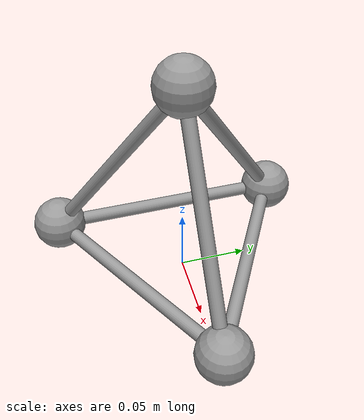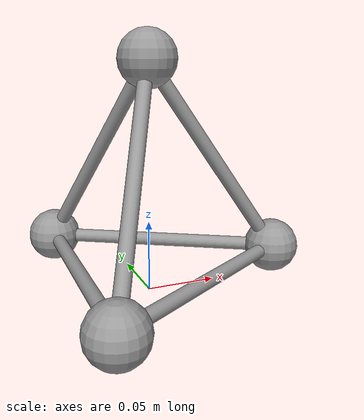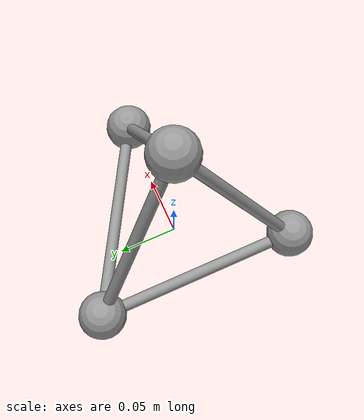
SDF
<?xml version="1.0" ?>

<sdf version="1.5">
  <model name="tetraball">
    <link name="link">
      <pose>0 0 0.02  0 0 0</pose>
      <inertial>
        <pose>0.0 0.0 0.03535533905932737  0 0 0</pose>
        <mass>0.08042477193189872</mass>
        <inertia>
          <ixx>0.0006160537529983441</ixx>
          <iyy>0.000616053752998344</iyy>
          <izz>0.0006160537529983441</izz>
          <ixy>0.0</ixy>
          <ixz>0.0</ixz>
          <iyz>0.0</iyz>
        </inertia>
      </inertial>

      <collision name="collision_a">
        <pose>0.09999999999999999 0 0  0 0 0</pose>
        <geometry>
          <sphere>
            <radius>0.02</radius>
          </sphere>
        </geometry>
        <surface>
          <friction>
            <ode>
              <mu>0.9</mu>
              <mu2>0.9</mu2>
            </ode>
          </friction>
        </surface>
      </collision>
      <visual name="visual_a">
        <pose>0.09999999999999999 0 0  0 0 0</pose>
        <geometry>
          <sphere>
            <radius>0.02</radius>
          </sphere>
        </geometry>
        <material>
          <script>
            <uri>file://media/materials/scripts/gazebo.material</uri>
            <name>Gazebo/Grey</name>
          </script>
        </material>
      </visual>

      <collision name="collision_a_to_b">
        <pose>0.024999999999999998 0.04330127018922193 0.0  -1.5707962969925737 -1.0471975511965974 1.047197525387029</pose>
        <geometry>
          <cylinder>
            <radius>0.005</radius>
            <length>0.17320508075688773</length>
          </cylinder>
        </geometry>
        <surface>
          <friction>
            <ode>
              <mu>0.9</mu>
              <mu2>0.9</mu2>
            </ode>
          </friction>
        </surface>
      </collision>
      <visual name="visual_a_to_b">
        <pose>0.024999999999999998 0.04330127018922193 0.0  -1.5707962969925737 -1.0471975511965974 1.047197525387029</pose>
        <geometry>
          <cylinder>
            <radius>0.005</radius>
            <length>0.17320508075688773</length>
          </cylinder>
        </geometry>
        <material>
          <script>
            <uri>file://media/materials/scripts/gazebo.material</uri>
            <name>Gazebo/Grey</name>
          </script>
        </material>
      </visual>

      <collision name="collision_a_to_c">
        <pose>0.024999999999999998 -0.04330127018922193 0.0  1.5707962969925737 -1.0471975511965974 -1.047197525387029</pose>
        <geometry>
          <cylinder>
            <radius>0.005</radius>
            <length>0.17320508075688773</length>
          </cylinder>
        </geometry>
        <surface>
          <friction>
            <ode>
              <mu>0.9</mu>
              <mu2>0.9</mu2>
            </ode>
          </friction>
        </surface>
      </collision>
      <visual name="visual_a_to_c">
        <pose>0.024999999999999998 -0.04330127018922193 0.0  1.5707962969925737 -1.0471975511965974 -1.047197525387029</pose>
        <geometry>
          <cylinder>
            <radius>0.005</radius>
            <length>0.17320508075688773</length>
          </cylinder>
        </geometry>
        <material>
          <script>
            <uri>file://media/materials/scripts/gazebo.material</uri>
            <name>Gazebo/Grey</name>
          </script>
        </material>
      </visual>

      <collision name="collision_a_to_d">
        <pose>0.049999999999999996 0.0 0.07071067811865474  0.0 -0.6154797086703877 0.0</pose>
        <geometry>
          <cylinder>
            <radius>0.005</radius>
            <length>0.1732050807568877</length>
          </cylinder>
        </geometry>
        <surface>
          <friction>
            <ode>
              <mu>0.9</mu>
              <mu2>0.9</mu2>
            </ode>
          </friction>
        </surface>
      </collision>
      <visual name="visual_a_to_d">
        <pose>0.049999999999999996 0.0 0.07071067811865474  0.0 -0.6154797086703877 0.0</pose>
        <geometry>
          <cylinder>
            <radius>0.005</radius>
            <length>0.1732050807568877</length>
          </cylinder>
        </geometry>
        <material>
          <script>
            <uri>file://media/materials/scripts/gazebo.material</uri>
            <name>Gazebo/Grey</name>
          </script>
        </material>
      </visual>

      <collision name="collision_b">
        <pose>-0.049999999999999996 0.08660254037844387 0  0 0 0</pose>
        <geometry>
          <sphere>
            <radius>0.02</radius>
          </sphere>
        </geometry>
        <surface>
          <friction>
            <ode>
              <mu>0.9</mu>
              <mu2>0.9</mu2>
            </ode>
          </friction>
        </surface>
      </collision>
      <visual name="visual_b">
        <pose>-0.049999999999999996 0.08660254037844387 0  0 0 0</pose>
        <geometry>
          <sphere>
            <radius>0.02</radius>
          </sphere>
        </geometry>
        <material>
          <script>
            <uri>file://media/materials/scripts/gazebo.material</uri>
            <name>Gazebo/Grey</name>
          </script>
        </material>
      </visual>

      <collision name="collision_b_to_c">
        <pose>-0.049999999999999996 0.0 0.0  1.5707963267948963 -0.0 0.0</pose>
        <geometry>
          <cylinder>
            <radius>0.005</radius>
            <length>0.17320508075688773</length>
          </cylinder>
        </geometry>
        <surface>
          <friction>
            <ode>
              <mu>0.9</mu>
              <mu2>0.9</mu2>
            </ode>
          </friction>
        </surface>
      </collision>
      <visual name="visual_b_to_c">
        <pose>-0.049999999999999996 0.0 0.0  1.5707963267948963 -0.0 0.0</pose>
        <geometry>
          <cylinder>
            <radius>0.005</radius>
            <length>0.17320508075688773</length>
          </cylinder>
        </geometry>
        <material>
          <script>
            <uri>file://media/materials/scripts/gazebo.material</uri>
            <name>Gazebo/Grey</name>
          </script>
        </material>
      </visual>

      <collision name="collision_b_to_d">
        <pose>-0.024999999999999998 0.04330127018922193 0.07071067811865474  0.5494672447576275 0.29284277172857565 0.08308811259360045</pose>
        <geometry>
          <cylinder>
            <radius>0.005</radius>
            <length>0.1732050807568877</length>
          </cylinder>
        </geometry>
        <surface>
          <friction>
            <ode>
              <mu>0.9</mu>
              <mu2>0.9</mu2>
            </ode>
          </friction>
        </surface>
      </collision>
      <visual name="visual_b_to_d">
        <pose>-0.024999999999999998 0.04330127018922193 0.07071067811865474  0.5494672447576275 0.29284277172857565 0.08308811259360045</pose>
        <geometry>
          <cylinder>
            <radius>0.005</radius>
            <length>0.1732050807568877</length>
          </cylinder>
        </geometry>
        <material>
          <script>
            <uri>file://media/materials/scripts/gazebo.material</uri>
            <name>Gazebo/Grey</name>
          </script>
        </material>
      </visual>

      <collision name="collision_c">
        <pose>-0.049999999999999996 -0.08660254037844387 0  0 0 0</pose>
        <geometry>
          <sphere>
            <radius>0.02</radius>
          </sphere>
        </geometry>
        <surface>
          <friction>
            <ode>
              <mu>0.9</mu>
              <mu2>0.9</mu2>
            </ode>
          </friction>
        </surface>
      </collision>
      <visual name="visual_c">
        <pose>-0.049999999999999996 -0.08660254037844387 0  0 0 0</pose>
        <geometry>
          <sphere>
            <radius>0.02</radius>
          </sphere>
        </geometry>
        <material>
          <script>
            <uri>file://media/materials/scripts/gazebo.material</uri>
            <name>Gazebo/Grey</name>
          </script>
        </material>
      </visual>

      <collision name="collision_c_to_d">
        <pose>-0.024999999999999998 -0.04330127018922193 0.07071067811865474  -0.5494672447576275 0.29284277172857565 -0.08308811259360045</pose>
        <geometry>
          <cylinder>
            <radius>0.005</radius>
            <length>0.1732050807568877</length>
          </cylinder>
        </geometry>
        <surface>
          <friction>
            <ode>
              <mu>0.9</mu>
              <mu2>0.9</mu2>
            </ode>
          </friction>
        </surface>
      </collision>
      <visual name="visual_c_to_d">
        <pose>-0.024999999999999998 -0.04330127018922193 0.07071067811865474  -0.5494672447576275 0.29284277172857565 -0.08308811259360045</pose>
        <geometry>
          <cylinder>
            <radius>0.005</radius>
            <length>0.1732050807568877</length>
          </cylinder>
        </geometry>
        <material>
          <script>
            <uri>file://media/materials/scripts/gazebo.material</uri>
            <name>Gazebo/Grey</name>
          </script>
        </material>
      </visual>

      <collision name="collision_d">
        <pose>0 0 0.14142135623730948  0 0 0</pose>
        <geometry>
          <sphere>
            <radius>0.02</radius>
          </sphere>
        </geometry>
        <surface>
          <friction>
            <ode>
              <mu>0.9</mu>
              <mu2>0.9</mu2>
            </ode>
          </friction>
        </surface>
      </collision>
      <visual name="visual_d">
        <pose>0 0 0.14142135623730948  0 0 0</pose>
        <geometry>
          <sphere>
            <radius>0.02</radius>
          </sphere>
        </geometry>
        <material>
          <script>
            <uri>file://media/materials/scripts/gazebo.material</uri>
            <name>Gazebo/Grey</name>
          </script>
        </material>
      </visual>

    </link>
  </model>
</sdf>
